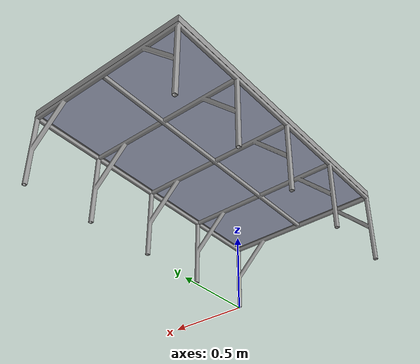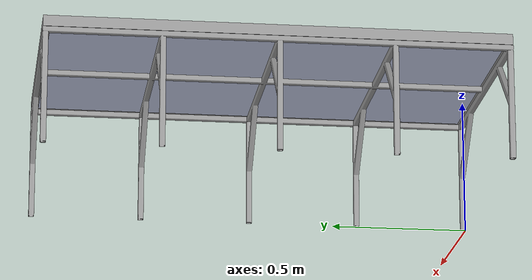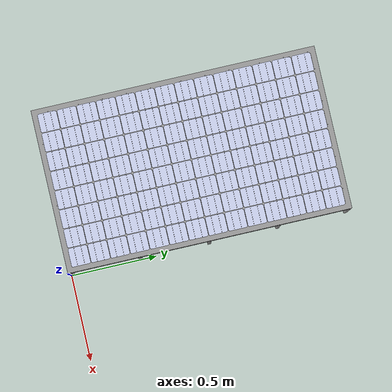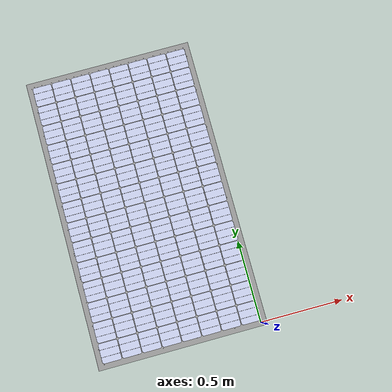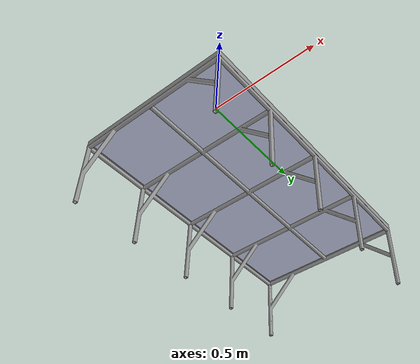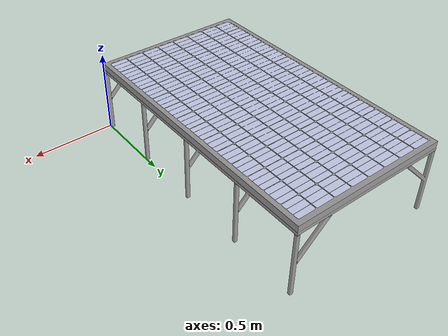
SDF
<?xml version='1.0'?>
<sdf version='1.7'>
  <model name='solar-panel'>
    <pose>0 0 0 0 -0 0</pose>
    <static>true</static>
    <link name='link_0'>
      <inertial>
        <mass>1</mass>
        <inertia>
          <ixx>0.166667</ixx>
          <ixy>0</ixy>
          <ixz>0</ixz>
          <iyy>0.166667</iyy>
          <iyz>0</iyz>
          <izz>0.166667</izz>
        </inertia>
        <pose>0 0 0 0 -0 0</pose>
      </inertial>
      <pose>0 0 0 0 -0 1.5708</pose>
      <gravity>1</gravity>
      <self_collide>0</self_collide>
      <kinematic>0</kinematic>
      <enable_wind>0</enable_wind>
      <visual name='visual'>
        <pose>0 0 0 0 -0 0</pose>
        <geometry>
          <mesh>
            <uri>/home/daniela-gomez/catkin_ws/src/panel-cleaner_description/world/Panel- Estructura_Panel.STL</uri>
            <scale>1 1 1</scale>
          </mesh>
        </geometry>
        <material>
          <lighting>1</lighting>
          <script>
            <uri>file://media/materials/scripts/gazebo.material</uri>
            <name>Gazebo/Grey</name>
          </script>
          <shader type='pixel'>
            <normal_map>__default__</normal_map>
          </shader>
          <ambient>0.3 0.3 0.3 1</ambient>
          <diffuse>0.7 0.7 0.7 1</diffuse>
          <specular>0.01 0.01 0.01 1</specular>
          <emissive>0 0 0 1</emissive>
        </material>
        <transparency>0</transparency>
        <cast_shadows>1</cast_shadows>
      </visual>
      <collision name='collision'>
        <laser_retro>0</laser_retro>
        <max_contacts>10</max_contacts>
        <pose>0 0 0 0 -0 0</pose>
        <geometry>
          <mesh>
            <uri>/home/daniela-gomez/catkin_ws/src/panel-cleaner_description/world/Panel- Estructura_Panel.STL</uri>
            <scale>1 1 1</scale>
          </mesh>
        </geometry>
        <surface>
          <friction>
            <ode>
              <mu>1</mu>
              <mu2>1</mu2>
              <fdir1>0 0 0</fdir1>
              <slip1>0</slip1>
              <slip2>0</slip2>
            </ode>
            <torsional>
              <coefficient>1</coefficient>
              <patch_radius>0</patch_radius>
              <surface_radius>0</surface_radius>
              <use_patch_radius>1</use_patch_radius>
              <ode>
                <slip>0</slip>
              </ode>
            </torsional>
          </friction>
          <bounce>
            <restitution_coefficient>0</restitution_coefficient>
            <threshold>1e+06</threshold>
          </bounce>
          <contact>
            <collide_without_contact>0</collide_without_contact>
            <collide_without_contact_bitmask>1</collide_without_contact_bitmask>
            <collide_bitmask>1</collide_bitmask>
            <ode>
              <soft_cfm>0</soft_cfm>
              <soft_erp>0.2</soft_erp>
              <kp>1e+13</kp>
              <kd>1</kd>
              <max_vel>0.01</max_vel>
              <min_depth>0</min_depth>
            </ode>
            <bullet>
              <split_impulse>1</split_impulse>
              <split_impulse_penetration_threshold>-0.01</split_impulse_penetration_threshold>
              <soft_cfm>0</soft_cfm>
              <soft_erp>0.2</soft_erp>
              <kp>1e+13</kp>
              <kd>1</kd>
            </bullet>
          </contact>
        </surface>
      </collision>
    </link>
    <link name='link_1'>
      <inertial>
        <mass>1</mass>
        <inertia>
          <ixx>0.166667</ixx>
          <ixy>0</ixy>
          <ixz>0</ixz>
          <iyy>0.166667</iyy>
          <iyz>0</iyz>
          <izz>0.166667</izz>
        </inertia>
        <pose>0 0 0 0 -0 0</pose>
      </inertial>
      <pose>0 0 0 0 -0 1.5708</pose>
      <gravity>1</gravity>
      <self_collide>0</self_collide>
      <kinematic>0</kinematic>
      <enable_wind>0</enable_wind>
      <visual name='visual'>
        <pose>0 0 0 0 -0 0</pose>
        <geometry>
          <mesh>
            <uri>/home/daniela-gomez/catkin_ws/src/panel-cleaner_description/world/Panel- panel_blanco.STL</uri>
            <scale>1 1 1</scale>
          </mesh>
        </geometry>
        <material>
          <lighting>1</lighting>
          <script>
            <uri>file://media/materials/scripts/gazebo.material</uri>
            <name>Gazebo/Grey</name>
          </script>
          <shader type='pixel'>
            <normal_map>__default__</normal_map>
          </shader>
          <ambient>1 1 1 1</ambient>
          <diffuse>1 1 1 1</diffuse>
          <specular>0 0 0 1</specular>
          <emissive>1 1 1 1</emissive>
        </material>
        <transparency>0</transparency>
        <cast_shadows>1</cast_shadows>
      </visual>
      <collision name='collision'>
        <laser_retro>0</laser_retro>
        <max_contacts>10</max_contacts>
        <pose>0 0 0 0 -0 0</pose>
        <geometry>
          <mesh>
            <uri>/home/daniela-gomez/catkin_ws/src/panel-cleaner_description/world/Panel- panel_blanco.STL</uri>
            <scale>1 1 1</scale>
          </mesh>
        </geometry>
        <surface>
          <friction>
            <ode>
              <mu>1</mu>
              <mu2>1</mu2>
              <fdir1>0 0 0</fdir1>
              <slip1>0</slip1>
              <slip2>0</slip2>
            </ode>
            <torsional>
              <coefficient>1</coefficient>
              <patch_radius>0</patch_radius>
              <surface_radius>0</surface_radius>
              <use_patch_radius>1</use_patch_radius>
              <ode>
                <slip>0</slip>
              </ode>
            </torsional>
          </friction>
          <bounce>
            <restitution_coefficient>0</restitution_coefficient>
            <threshold>1e+06</threshold>
          </bounce>
          <contact>
            <collide_without_contact>0</collide_without_contact>
            <collide_without_contact_bitmask>1</collide_without_contact_bitmask>
            <collide_bitmask>1</collide_bitmask>
            <ode>
              <soft_cfm>0</soft_cfm>
              <soft_erp>0.2</soft_erp>
              <kp>1e+13</kp>
              <kd>1</kd>
              <max_vel>0.01</max_vel>
              <min_depth>0</min_depth>
            </ode>
            <bullet>
              <split_impulse>1</split_impulse>
              <split_impulse_penetration_threshold>-0.01</split_impulse_penetration_threshold>
              <soft_cfm>0</soft_cfm>
              <soft_erp>0.2</soft_erp>
              <kp>1e+13</kp>
              <kd>1</kd>
            </bullet>
          </contact>
        </surface>
      </collision>
    </link>
    <link name='link_2'>
      <inertial>
        <mass>1</mass>
        <inertia>
          <ixx>0.166667</ixx>
          <ixy>0</ixy>
          <ixz>0</ixz>
          <iyy>0.166667</iyy>
          <iyz>0</iyz>
          <izz>0.166667</izz>
        </inertia>
        <pose>0 0 0 0 -0 0</pose>
      </inertial>
      <pose>0 0 0 0 -0 1.5708</pose>
      <gravity>1</gravity>
      <self_collide>0</self_collide>
      <kinematic>0</kinematic>
      <enable_wind>0</enable_wind>
      <visual name='visual'>
        <pose>0 0 0 0 -0 0</pose>
        <geometry>
          <mesh>
            <uri>/home/daniela-gomez/catkin_ws/src/panel-cleaner_description/world/Panel - panel_azul.STL</uri>
            <scale>1 1 1</scale>
          </mesh>
        </geometry>
        <material>
          <lighting>1</lighting>
          <script>
            <uri>file://media/materials/scripts/gazebo.material</uri>
            <name>Gazebo/Grey</name>
          </script>
          <shader type='pixel'>
            <normal_map>__default__</normal_map>
          </shader>
          <ambient>0 0 0.933 1</ambient>
          <diffuse>0.792 0.819 0.933 1</diffuse>
          <specular>0.792 0.819 0.933 1</specular>
          <emissive>0 0 0 1</emissive>
        </material>
        <transparency>0</transparency>
        <cast_shadows>1</cast_shadows>
      </visual>
      <collision name='collision'>
        <laser_retro>0</laser_retro>
        <max_contacts>10</max_contacts>
        <pose>0 0 0 0 -0 0</pose>
        <geometry>
          <mesh>
            <uri>/home/daniela-gomez/catkin_ws/src/panel-cleaner_description/world/Panel - panel_azul.STL</uri>
            <scale>1 1 1</scale>
          </mesh>
        </geometry>
        <surface>
          <friction>
            <ode>
              <mu>1</mu>
              <mu2>1</mu2>
              <fdir1>0 0 0</fdir1>
              <slip1>0</slip1>
              <slip2>0</slip2>
            </ode>
            <torsional>
              <coefficient>1</coefficient>
              <patch_radius>0</patch_radius>
              <surface_radius>0</surface_radius>
              <use_patch_radius>1</use_patch_radius>
              <ode>
                <slip>0</slip>
              </ode>
            </torsional>
          </friction>
          <bounce>
            <restitution_coefficient>0</restitution_coefficient>
            <threshold>1e+06</threshold>
          </bounce>
          <contact>
            <collide_without_contact>0</collide_without_contact>
            <collide_without_contact_bitmask>1</collide_without_contact_bitmask>
            <collide_bitmask>1</collide_bitmask>
            <ode>
              <soft_cfm>0</soft_cfm>
              <soft_erp>0.2</soft_erp>
              <kp>1e+13</kp>
              <kd>1</kd>
              <max_vel>0.01</max_vel>
              <min_depth>0</min_depth>
            </ode>
            <bullet>
              <split_impulse>1</split_impulse>
              <split_impulse_penetration_threshold>-0.01</split_impulse_penetration_threshold>
              <soft_cfm>0</soft_cfm>
              <soft_erp>0.2</soft_erp>
              <kp>1e+13</kp>
              <kd>1</kd>
            </bullet>
          </contact>
        </surface>
      </collision>
    </link>
    <allow_auto_disable>1</allow_auto_disable>
  </model>
</sdf>
